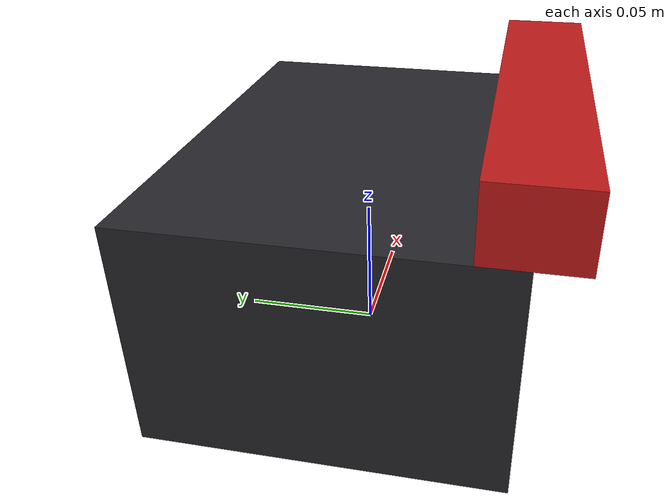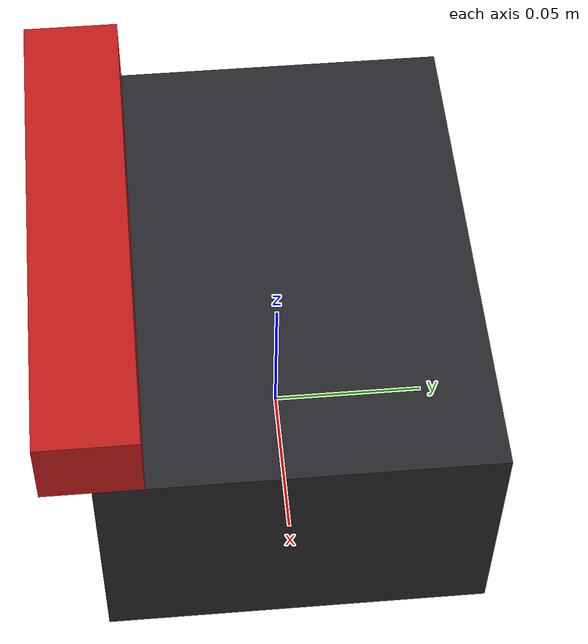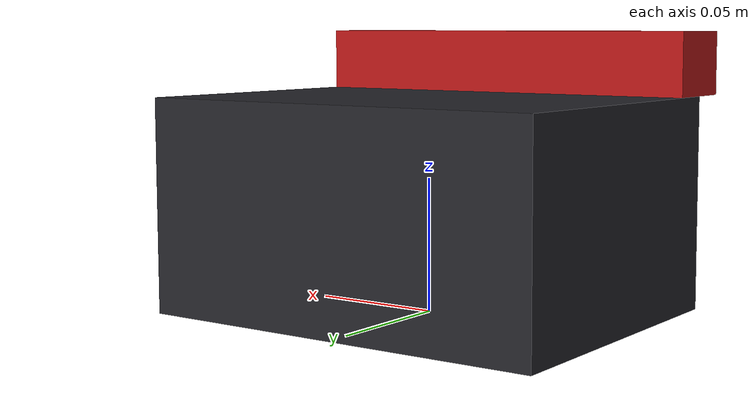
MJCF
<?xml version="1.0" encoding="utf-8"?>
<mujoco model="real_lab_chulalongkorn_potentiostat">
  <compiler angle="radian" autolimits="true"/>
  <default>
    <default class="body"><geom contype="1" conaffinity="1"/></default>
  </default>
  <worldbody>
    <body name="base">
      <geom type="box" size="0.08 0.06 0.04" pos="0 0 0.04" rgba="0.15 0.15 0.17 1" class="body"/>
      <body name="lid" pos="0 -0.06 0.08">
        <joint name="lid_joint" type="hinge" axis="0 1 0" range="0 1.5" damping="0.6" frictionloss="0.25"/>
  <geom type="box" size="0.08 0.015 0.012" pos="0 0 0.012" rgba="0.75 0.1 0.1 1" class="body"/>
      </body>
    </body>
  </worldbody>
</mujoco>
